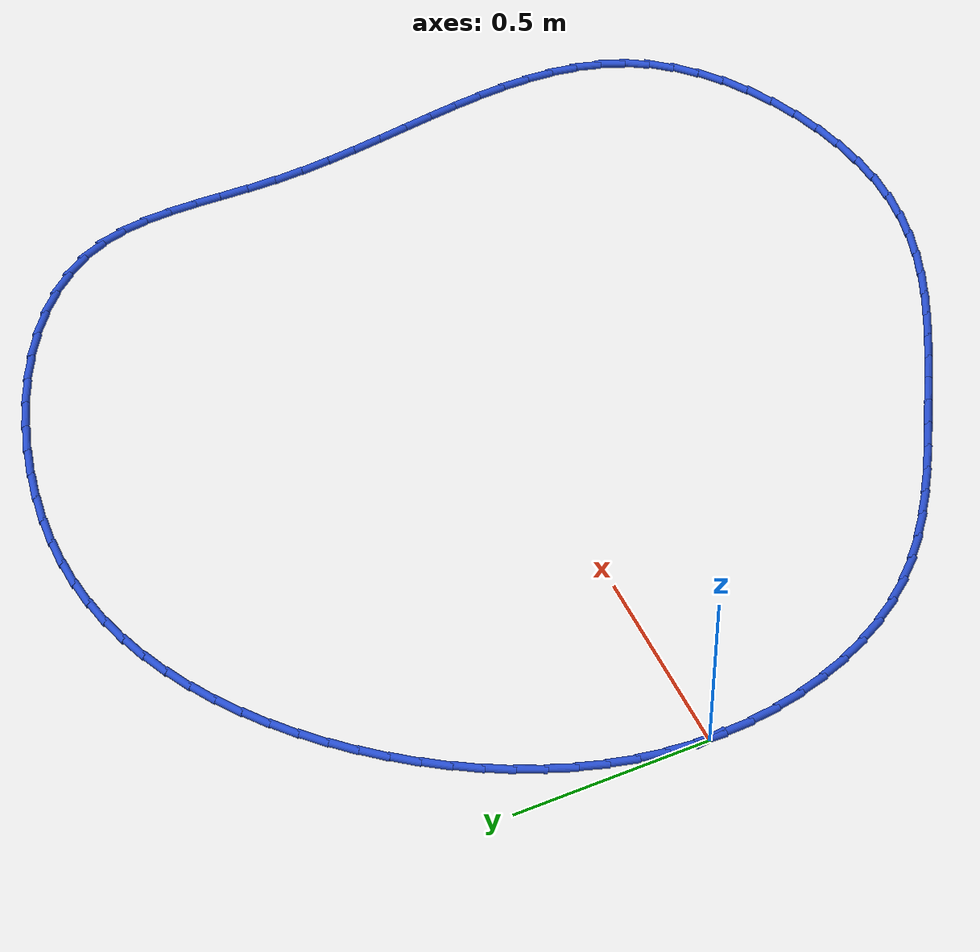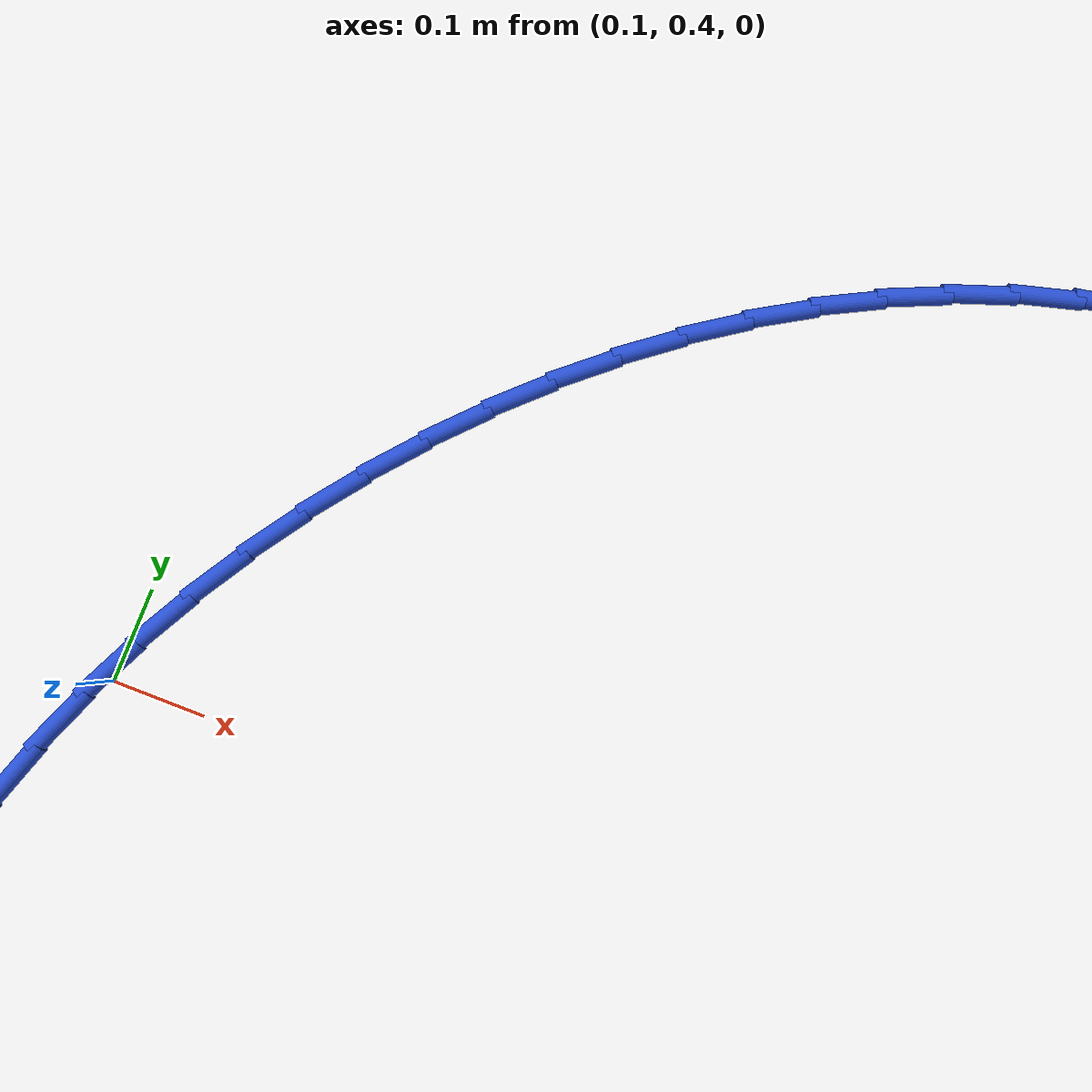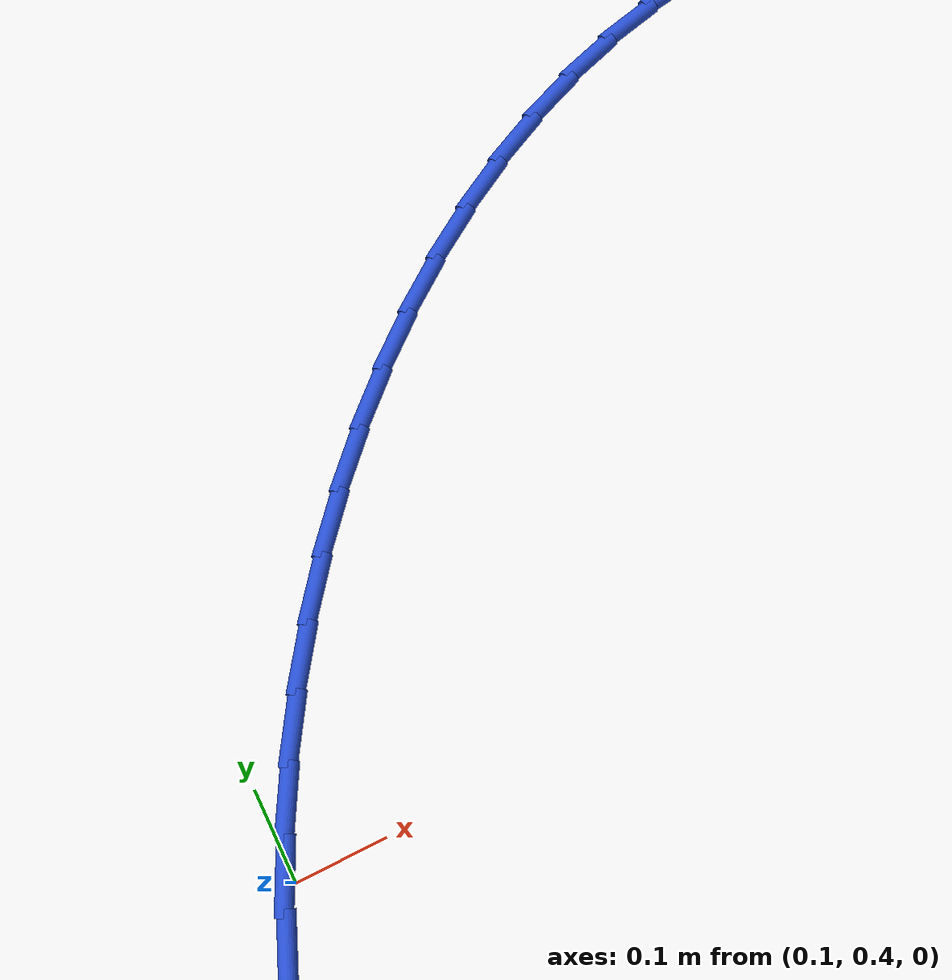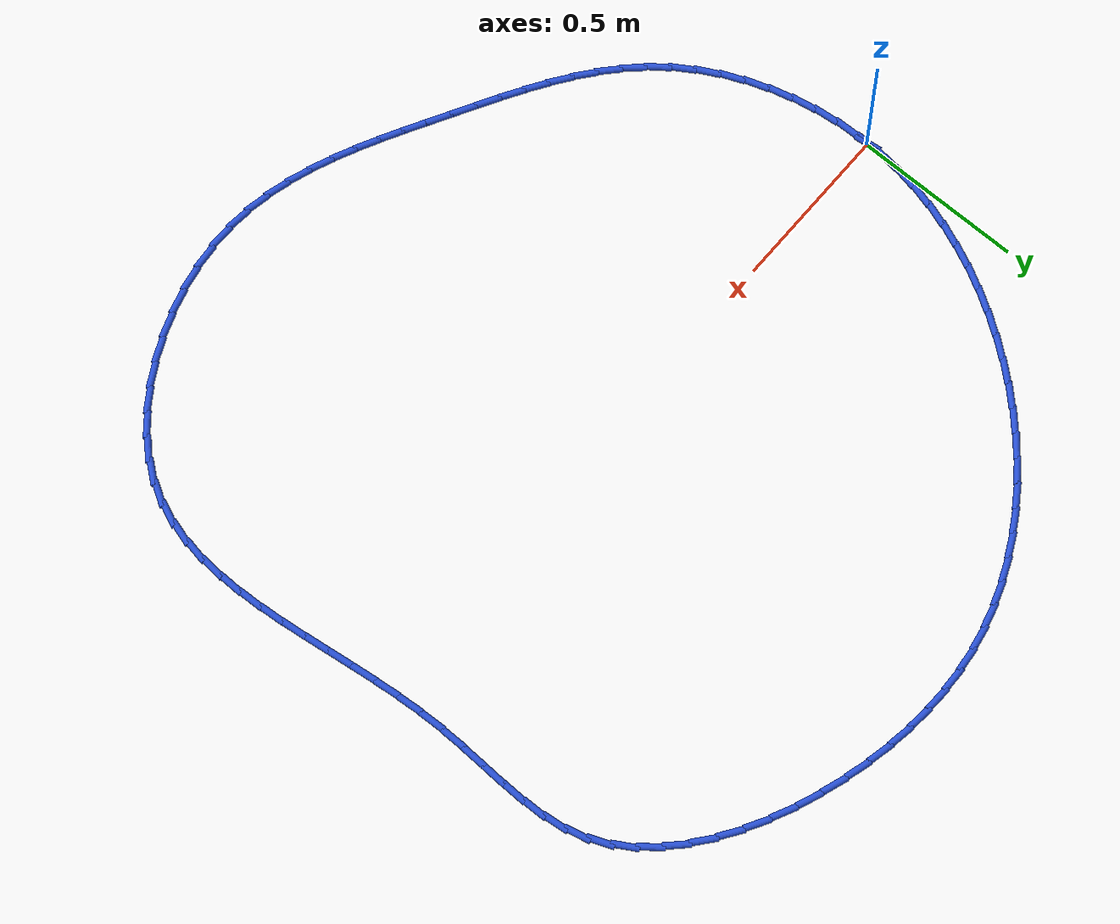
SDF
<sdf version="1.6">
 <world name="default">
  <light name="sun" type="directional">
   <pose>0 0 10 0 -0 0</pose>
   <diffuse>0.8 0.8 0.8 1</diffuse>
   <specular>0.2 0.2 0.2 1</specular>
   <attenuation>
    <range>1000</range>
    <constant>0.9</constant>
    <linear>0.01</linear>
    <quadratic>0.001</quadratic>
   </attenuation>
   <direction>-0.5 0.1 -0.9</direction>
  </light>
  <model name="ground_plane">
   <static>1</static>
   <link name="link">
    <collision name="collision">
     <geometry><plane><normal>0 0 1</normal><size>100 100</size></plane></geometry>
     <surface><friction><ode><mu>100</mu><mu2>50</mu2></ode></friction></surface>
    </collision>
    <visual name="visual">
     <cast_shadows>0</cast_shadows>
     <geometry><plane><normal>0 0 1</normal><size>100 100</size></plane></geometry>
     <material>
      <script><uri>file://media/materials/scripts/gazebo.material</uri><name>Gazebo/WhiteGlow</name></script>
     </material>
    </visual>
   </link>
  </model>
  <gravity>0 0 -9.8</gravity>
  <magnetic_field>6e-06 2.3e-05 -4.2e-05</magnetic_field>
  <atmosphere type="adiabatic"/>
  <physics name="default_physics" default="0" type="ode">
   <max_step_size>0.001</max_step_size>
   <real_time_factor>1</real_time_factor>
   <real_time_update_rate>1000</real_time_update_rate>
  </physics>
  <scene><ambient>0.4 0.4 0.4 1</ambient><background>0.7 0.7 0.7 1</background><shadows>1</shadows></scene>
  <spherical_coordinates>
   <surface_model>EARTH_WGS84</surface_model>
   <latitude_deg>0</latitude_deg>
   <longitude_deg>0</longitude_deg>
   <elevation>0</elevation>
   <heading_deg>0</heading_deg>
  </spherical_coordinates>
  <model name="line">
   <link name="link_0">
    <pose>-9.367506770274758e-17 -1.942890293094024e-16 0.01 0 1.57 1.5202097255137754</pose>
    <collision name="collision">
     <geometry><cylinder><radius>0.01</radius><length>0.08</length></cylinder></geometry>
    </collision>
    <visual name="visual">
     <material>
      <script><name>Gazebo/Blue</name><uri>file://media/materials/scripts/gazebo.material</uri></script>
     </material>
     <geometry><cylinder><radius>0.01</radius><length>0.08</length></cylinder></geometry>
    </visual>
   </link>
   <link name="link_1">
    <pose>0.003591075892938231 0.07092811310826894 0.01 0 1.57 1.4467701393962549</pose>
    <collision name="collision">
     <geometry><cylinder><radius>0.01</radius><length>0.08</length></cylinder></geometry>
    </collision>
    <visual name="visual">
     <material>
      <script><name>Gazebo/Blue</name><uri>file://media/materials/scripts/gazebo.material</uri></script>
     </material>
     <geometry><cylinder><radius>0.01</radius><length>0.08</length></cylinder></geometry>
    </visual>
   </link>
   <link name="link_2">
    <pose>0.012328880521949337 0.1410177910967827 0.01 0 1.57 1.3757837765652383</pose>
    <collision name="collision">
     <geometry><cylinder><radius>0.01</radius><length>0.08</length></cylinder></geometry>
    </collision>
    <visual name="visual">
     <material>
      <script><name>Gazebo/Blue</name><uri>file://media/materials/scripts/gazebo.material</uri></script>
     </material>
     <geometry><cylinder><radius>0.01</radius><length>0.08</length></cylinder></geometry>
    </visual>
   </link>
   <link name="link_3">
    <pose>0.025986804909772045 0.210163840122388 0.01 0 1.57 1.3075610823379984</pose>
    <collision name="collision">
     <geometry><cylinder><radius>0.01</radius><length>0.08</length></cylinder></geometry>
    </collision>
    <visual name="visual">
     <material>
      <script><name>Gazebo/Blue</name><uri>file://media/materials/scripts/gazebo.material</uri></script>
     </material>
     <geometry><cylinder><radius>0.01</radius><length>0.08</length></cylinder></geometry>
    </visual>
   </link>
   <link name="link_4">
    <pose>0.04433824007914517 0.2782610663419318 0.01 0 1.57 1.2422861387038857</pose>
    <collision name="collision">
     <geometry><cylinder><radius>0.01</radius><length>0.08</length></cylinder></geometry>
    </collision>
    <visual name="visual">
     <material>
      <script><name>Gazebo/Blue</name><uri>file://media/materials/scripts/gazebo.material</uri></script>
     </material>
     <geometry><cylinder><radius>0.01</radius><length>0.08</length></cylinder></geometry>
    </visual>
   </link>
   <link name="link_5">
    <pose>0.06715657705280757 0.3452042759122611 0.01 0 1.57 1.1800294768730133</pose>
    <collision name="collision">
     <geometry><cylinder><radius>0.01</radius><length>0.08</length></cylinder></geometry>
    </collision>
    <visual name="visual">
     <material>
      <script><name>Gazebo/Blue</name><uri>file://media/materials/scripts/gazebo.material</uri></script>
     </material>
     <geometry><cylinder><radius>0.01</radius><length>0.08</length></cylinder></geometry>
    </visual>
   </link>
   <link name="link_6">
    <pose>0.09421520685349805 0.41088827499022273 0.01 0 1.57 1.1207659774316616</pose>
    <collision name="collision">
     <geometry><cylinder><radius>0.01</radius><length>0.08</length></cylinder></geometry>
    </collision>
    <visual name="visual">
     <material>
      <script><name>Gazebo/Blue</name><uri>file://media/materials/scripts/gazebo.material</uri></script>
     </material>
     <geometry><cylinder><radius>0.01</radius><length>0.08</length></cylinder></geometry>
    </visual>
   </link>
   <link name="link_7">
    <pose>0.12528752050395547 0.47520786973266377 0.01 0 1.57 1.0643944751226841</pose>
    <collision name="collision">
     <geometry><cylinder><radius>0.01</radius><length>0.08</length></cylinder></geometry>
    </collision>
    <visual name="visual">
     <material>
      <script><name>Gazebo/Blue</name><uri>file://media/materials/scripts/gazebo.material</uri></script>
     </material>
     <geometry><cylinder><radius>0.01</radius><length>0.08</length></cylinder></geometry>
    </visual>
   </link>
   <link name="link_8">
    <pose>0.16014690902691864 0.5380578662964312 0.01 0 1.57 1.01075463141925</pose>
    <collision name="collision">
     <geometry><cylinder><radius>0.01</radius><length>0.08</length></cylinder></geometry>
    </collision>
    <visual name="visual">
     <material>
      <script><name>Gazebo/Blue</name><uri>file://media/materials/scripts/gazebo.material</uri></script>
     </material>
     <geometry><cylinder><radius>0.01</radius><length>0.08</length></cylinder></geometry>
    </visual>
   </link>
   <link name="link_9">
    <pose>0.1985668033121379 0.5993328699810841 0.01 0 1.57 0.9591589978272327</pose>
    <collision name="collision">
     <geometry><cylinder><radius>0.01</radius><length>0.08</length></cylinder></geometry>
    </collision>
    <visual name="visual">
     <material>
      <script><name>Gazebo/Blue</name><uri>file://media/materials/scripts/gazebo.material</uri></script>
     </material>
     <geometry><cylinder><radius>0.01</radius><length>0.08</length></cylinder></geometry>
    </visual>
   </link>
   <link name="link_10">
    <pose>0.24033020231416433 0.6588792804276576 0.01 0 1.57 0.9081551736280491</pose>
    <collision name="collision">
     <geometry><cylinder><radius>0.01</radius><length>0.08</length></cylinder></geometry>
    </collision>
    <visual name="visual">
     <material>
      <script><name>Gazebo/Blue</name><uri>file://media/materials/scripts/gazebo.material</uri></script>
     </material>
     <geometry><cylinder><radius>0.01</radius><length>0.08</length></cylinder></geometry>
    </visual>
   </link>
   <link name="link_11">
    <pose>0.2852420287170048 0.7164330415227844 0.01 0 1.57 0.8571451235882728</pose>
    <collision name="collision">
     <geometry><cylinder><radius>0.01</radius><length>0.08</length></cylinder></geometry>
    </collision>
    <visual name="visual">
     <material>
      <script><name>Gazebo/Blue</name><uri>file://media/materials/scripts/gazebo.material</uri></script>
     </material>
     <geometry><cylinder><radius>0.01</radius><length>0.08</length></cylinder></geometry>
    </visual>
   </link>
   <link name="link_12">
    <pose>0.3331102630202989 0.7717146913192874 0.01 0 1.57 0.8056875525331335</pose>
    <collision name="collision">
     <geometry><cylinder><radius>0.01</radius><length>0.08</length></cylinder></geometry>
    </collision>
    <visual name="visual">
     <material>
      <script><name>Gazebo/Blue</name><uri>file://media/materials/scripts/gazebo.material</uri></script>
     </material>
     <geometry><cylinder><radius>0.01</radius><length>0.08</length></cylinder></geometry>
    </visual>
   </link>
   <link name="link_13">
    <pose>0.3837428857236856 0.8244447678699897 0.01 0 1.57 0.7533449266406702</pose>
    <collision name="collision">
     <geometry><cylinder><radius>0.01</radius><length>0.08</length></cylinder></geometry>
    </collision>
    <visual name="visual">
     <material>
      <script><name>Gazebo/Blue</name><uri>file://media/materials/scripts/gazebo.material</uri></script>
     </material>
     <geometry><cylinder><radius>0.01</radius><length>0.08</length></cylinder></geometry>
    </visual>
   </link>
   <link name="link_14">
    <pose>0.4369478773268041 0.8743438092277142 0.01 0 1.57 0.6996805863514322</pose>
    <collision name="collision">
     <geometry><cylinder><radius>0.01</radius><length>0.08</length></cylinder></geometry>
    </collision>
    <visual name="visual">
     <material>
      <script><name>Gazebo/Blue</name><uri>file://media/materials/scripts/gazebo.material</uri></script>
     </material>
     <geometry><cylinder><radius>0.01</radius><length>0.08</length></cylinder></geometry>
    </visual>
   </link>
   <link name="link_15">
    <pose>0.49253321832929375 0.9211323534452839 0.01 0 1.57 0.6442576407542906</pose>
    <collision name="collision">
     <geometry><cylinder><radius>0.01</radius><length>0.08</length></cylinder></geometry>
    </collision>
    <visual name="visual">
     <material>
      <script><name>Gazebo/Blue</name><uri>file://media/materials/scripts/gazebo.material</uri></script>
     </material>
     <geometry><cylinder><radius>0.01</radius><length>0.08</length></cylinder></geometry>
    </visual>
   </link>
   <link name="link_16">
    <pose>0.5503068892307938 0.9645309385755221 0.01 0 1.57 0.5866404964689935</pose>
    <collision name="collision">
     <geometry><cylinder><radius>0.01</radius><length>0.08</length></cylinder></geometry>
    </collision>
    <visual name="visual">
     <material>
      <script><name>Gazebo/Blue</name><uri>file://media/materials/scripts/gazebo.material</uri></script>
     </material>
     <geometry><cylinder><radius>0.01</radius><length>0.08</length></cylinder></geometry>
    </visual>
   </link>
   <link name="link_17">
    <pose>0.6100768705309437 1.0042601026712519 0.01 0 1.57 0.5264000914673861</pose>
    <collision name="collision">
     <geometry><cylinder><radius>0.01</radius><length>0.08</length></cylinder></geometry>
    </collision>
    <visual name="visual">
     <material>
      <script><name>Gazebo/Blue</name><uri>file://media/materials/scripts/gazebo.material</uri></script>
     </material>
     <geometry><cylinder><radius>0.01</radius><length>0.08</length></cylinder></geometry>
    </visual>
   </link>
   <link name="link_18">
    <pose>0.6716511427293823 1.0400403837852956 0.01 0 1.57 0.46312412502920985</pose>
    <collision name="collision">
     <geometry><cylinder><radius>0.01</radius><length>0.08</length></cylinder></geometry>
    </collision>
    <visual name="visual">
     <material>
      <script><name>Gazebo/Blue</name><uri>file://media/materials/scripts/gazebo.material</uri></script>
     </material>
     <geometry><cylinder><radius>0.01</radius><length>0.08</length></cylinder></geometry>
    </visual>
   </link>
   <link name="link_19">
    <pose>0.7348376863257492 1.071592319970477 0.01 0 1.57 0.3964336999234403</pose>
    <collision name="collision">
     <geometry><cylinder><radius>0.01</radius><length>0.08</length></cylinder></geometry>
    </collision>
    <visual name="visual">
     <material>
      <script><name>Gazebo/Blue</name><uri>file://media/materials/scripts/gazebo.material</uri></script>
     </material>
     <geometry><cylinder><radius>0.01</radius><length>0.08</length></cylinder></geometry>
    </visual>
   </link>
   <link name="link_20">
    <pose>0.7994444818196833 1.0986364492796186 0.01 0 1.57 0.3260076514048042</pose>
    <collision name="collision">
     <geometry><cylinder><radius>0.01</radius><length>0.08</length></cylinder></geometry>
    </collision>
    <visual name="visual">
     <material>
      <script><name>Gazebo/Blue</name><uri>file://media/materials/scripts/gazebo.material</uri></script>
     </material>
     <geometry><cylinder><radius>0.01</radius><length>0.08</length></cylinder></geometry>
    </visual>
   </link>
   <link name="link_21">
    <pose>0.8652795097108241 1.120893309765544 0.01 0 1.57 0.25164124478766664</pose>
    <collision name="collision">
     <geometry><cylinder><radius>0.01</radius><length>0.08</length></cylinder></geometry>
    </collision>
    <visual name="visual">
     <material>
      <script><name>Gazebo/Blue</name><uri>file://media/materials/scripts/gazebo.material</uri></script>
     </material>
     <geometry><cylinder><radius>0.01</radius><length>0.08</length></cylinder></geometry>
    </visual>
   </link>
   <link name="link_22">
    <pose>0.9321517997017381 1.138085567577966 0.01 0 1.57 0.17513519315983364</pose>
    <collision name="collision">
     <geometry><cylinder><radius>0.01</radius><length>0.08</length></cylinder></geometry>
    </collision>
    <visual name="visual">
     <material>
      <script><name>Gazebo/Blue</name><uri>file://media/materials/scripts/gazebo.material</uri></script>
     </material>
     <geometry><cylinder><radius>0.01</radius><length>0.08</length></cylinder></geometry>
    </visual>
   </link>
   <link name="link_23">
    <pose>0.9999418693187853 1.1500808875236996 0.01 0 1.57 0.10011423240111632</pose>
    <collision name="collision">
     <geometry><cylinder><radius>0.01</radius><length>0.08</length></cylinder></geometry>
    </collision>
    <visual name="visual">
     <material>
      <script><name>Gazebo/Blue</name><uri>file://media/materials/scripts/gazebo.material</uri></script>
     </material>
     <geometry><cylinder><radius>0.01</radius><length>0.08</length></cylinder></geometry>
    </visual>
   </link>
   <link name="link_24">
    <pose>1.0686462505837233 1.1569822464549464 0.01 0 1.57 0.027739819786499875</pose>
    <collision name="collision">
     <geometry><cylinder><radius>0.01</radius><length>0.08</length></cylinder></geometry>
    </collision>
    <visual name="visual">
     <material>
      <script><name>Gazebo/Blue</name><uri>file://media/materials/scripts/gazebo.material</uri></script>
     </material>
     <geometry><cylinder><radius>0.01</radius><length>0.08</length></cylinder></geometry>
    </visual>
   </link>
   <link name="link_25">
    <pose>1.138272089843622 1.1589141502457003 0.01 0 1.57 -0.041264472325883685</pose>
    <collision name="collision">
     <geometry><cylinder><radius>0.01</radius><length>0.08</length></cylinder></geometry>
    </collision>
    <visual name="visual">
     <material>
      <script><name>Gazebo/Blue</name><uri>file://media/materials/scripts/gazebo.material</uri></script>
     </material>
     <geometry><cylinder><radius>0.01</radius><length>0.08</length></cylinder></geometry>
    </visual>
   </link>
   <link name="link_26">
    <pose>1.2088265334455526 1.1560011047699563 0.01 0 1.57 -0.10637368255126951</pose>
    <collision name="collision">
     <geometry><cylinder><radius>0.01</radius><length>0.08</length></cylinder></geometry>
    </collision>
    <visual name="visual">
     <material>
      <script><name>Gazebo/Blue</name><uri>file://media/materials/scripts/gazebo.material</uri></script>
     </material>
     <geometry><cylinder><radius>0.01</radius><length>0.08</length></cylinder></geometry>
    </visual>
   </link>
   <link name="link_27">
    <pose>1.2803167277365837 1.148367615901708 0.01 0 1.57 -0.16726015128244698</pose>
    <collision name="collision">
     <geometry><cylinder><radius>0.01</radius><length>0.08</length></cylinder></geometry>
    </collision>
    <visual name="visual">
     <material>
      <script><name>Gazebo/Blue</name><uri>file://media/materials/scripts/gazebo.material</uri></script>
     </material>
     <geometry><cylinder><radius>0.01</radius><length>0.08</length></cylinder></geometry>
    </visual>
   </link>
   <link name="link_28">
    <pose>1.3527498190637868 1.13613818951495 0.01 0 1.57 -0.22388509589639952</pose>
    <collision name="collision">
     <geometry><cylinder><radius>0.01</radius><length>0.08</length></cylinder></geometry>
    </collision>
    <visual name="visual">
     <material>
      <script><name>Gazebo/Blue</name><uri>file://media/materials/scripts/gazebo.material</uri></script>
     </material>
     <geometry><cylinder><radius>0.01</radius><length>0.08</length></cylinder></geometry>
    </visual>
   </link>
   <link name="link_29">
    <pose>1.4261016398355362 1.1194358066773706 0.01 0 1.57 -0.2784640860886954</pose>
    <collision name="collision">
     <geometry><cylinder><radius>0.01</radius><length>0.08</length></cylinder></geometry>
    </collision>
    <visual name="visual">
     <material>
      <script><name>Gazebo/Blue</name><uri>file://media/materials/scripts/gazebo.material</uri></script>
     </material>
     <geometry><cylinder><radius>0.01</radius><length>0.08</length></cylinder></geometry>
    </visual>
   </link>
   <link name="link_30">
    <pose>1.499827680571477 1.0983581108393912 0.01 0 1.57 -0.33401438291265073</pose>
    <collision name="collision">
     <geometry><cylinder><radius>0.01</radius><length>0.08</length></cylinder></geometry>
    </collision>
    <visual name="visual">
     <material>
      <script><name>Gazebo/Blue</name><uri>file://media/materials/scripts/gazebo.material</uri></script>
     </material>
     <geometry><cylinder><radius>0.01</radius><length>0.08</length></cylinder></geometry>
    </visual>
   </link>
   <link name="link_31">
    <pose>1.5729546111034842 1.0729818643832418 0.01 0 1.57 -0.3922828282851192</pose>
    <collision name="collision">
     <geometry><cylinder><radius>0.01</radius><length>0.08</length></cylinder></geometry>
    </collision>
    <visual name="visual">
     <material>
      <script><name>Gazebo/Blue</name><uri>file://media/materials/scripts/gazebo.material</uri></script>
     </material>
     <geometry><cylinder><radius>0.01</radius><length>0.08</length></cylinder></geometry>
    </visual>
   </link>
   <link name="link_32">
    <pose>1.644496306557852 1.043383206663562 0.01 0 1.57 -0.45502464035152984</pose>
    <collision name="collision">
     <geometry><cylinder><radius>0.01</radius><length>0.08</length></cylinder></geometry>
    </collision>
    <visual name="visual">
     <material>
      <script><name>Gazebo/Blue</name><uri>file://media/materials/scripts/gazebo.material</uri></script>
     </material>
     <geometry><cylinder><radius>0.01</radius><length>0.08</length></cylinder></geometry>
    </visual>
   </link>
   <link name="link_33">
    <pose>1.713466642060874 1.0096382770349912 0.01 0 1.57 -0.5241596674916342</pose>
    <collision name="collision">
     <geometry><cylinder><radius>0.01</radius><length>0.08</length></cylinder></geometry>
    </collision>
    <visual name="visual">
     <material>
      <script><name>Gazebo/Blue</name><uri>file://media/materials/scripts/gazebo.material</uri></script>
     </material>
     <geometry><cylinder><radius>0.01</radius><length>0.08</length></cylinder></geometry>
    </visual>
   </link>
   <link name="link_34">
    <pose>1.7788794927388432 0.9718232148521692 0.01 0 1.57 -0.601857187533172</pose>
    <collision name="collision">
     <geometry><cylinder><radius>0.01</radius><length>0.08</length></cylinder></geometry>
    </collision>
    <visual name="visual">
     <material>
      <script><name>Gazebo/Blue</name><uri>file://media/materials/scripts/gazebo.material</uri></script>
     </material>
     <geometry><cylinder><radius>0.01</radius><length>0.08</length></cylinder></geometry>
    </visual>
   </link>
   <link name="link_35">
    <pose>1.8397487337180534 0.9300141594697353 0.01 0 1.57 -0.6905717316180935</pose>
    <collision name="collision">
     <geometry><cylinder><radius>0.01</radius><length>0.08</length></cylinder></geometry>
    </collision>
    <visual name="visual">
     <material>
      <script><name>Gazebo/Blue</name><uri>file://media/materials/scripts/gazebo.material</uri></script>
     </material>
     <geometry><cylinder><radius>0.01</radius><length>0.08</length></cylinder></geometry>
    </visual>
   </link>
   <link name="link_36">
    <pose>1.8950882401247982 0.8842872502423292 0.01 0 1.57 -0.7929695154621982</pose>
    <collision name="collision">
     <geometry><cylinder><radius>0.01</radius><length>0.08</length></cylinder></geometry>
    </collision>
    <visual name="visual">
     <material>
      <script><name>Gazebo/Blue</name><uri>file://media/materials/scripts/gazebo.material</uri></script>
     </material>
     <geometry><cylinder><radius>0.01</radius><length>0.08</length></cylinder></geometry>
    </visual>
   </link>
   <link name="link_37">
    <pose>1.9439118870853709 0.8347186265245898 0.01 0 1.57 -0.9116308424513547</pose>
    <collision name="collision">
     <geometry><cylinder><radius>0.01</radius><length>0.08</length></cylinder></geometry>
    </collision>
    <visual name="visual">
     <material>
      <script><name>Gazebo/Blue</name><uri>file://media/materials/scripts/gazebo.material</uri></script>
     </material>
     <geometry><cylinder><radius>0.01</radius><length>0.08</length></cylinder></geometry>
    </visual>
   </link>
   <link name="link_38">
    <pose>1.9852335497260651 0.7813844276711569 0.01 0 1.57 -1.0483696649962257</pose>
    <collision name="collision">
     <geometry><cylinder><radius>0.01</radius><length>0.08</length></cylinder></geometry>
    </collision>
    <visual name="visual">
     <material>
      <script><name>Gazebo/Blue</name><uri>file://media/materials/scripts/gazebo.material</uri></script>
     </material>
     <geometry><cylinder><radius>0.01</radius><length>0.08</length></cylinder></geometry>
    </visual>
   </link>
   <link name="link_39">
    <pose>2.018067103173175 0.7243607930366703 0.01 0 1.57 -1.2028032870324397</pose>
    <collision name="collision">
     <geometry><cylinder><radius>0.01</radius><length>0.08</length></cylinder></geometry>
    </collision>
    <visual name="visual">
     <material>
      <script><name>Gazebo/Blue</name><uri>file://media/materials/scripts/gazebo.material</uri></script>
     </material>
     <geometry><cylinder><radius>0.01</radius><length>0.08</length></cylinder></geometry>
    </visual>
   </link>
   <link name="link_40">
    <pose>2.0414451632674444 0.6637261361759892 0.01 0 1.57 -1.3545075451910598</pose>
    <collision name="collision">
     <geometry><cylinder><radius>0.01</radius><length>0.08</length></cylinder></geometry>
    </collision>
    <visual name="visual">
     <material>
      <script><name>Gazebo/Blue</name><uri>file://media/materials/scripts/gazebo.material</uri></script>
     </material>
     <geometry><cylinder><radius>0.01</radius><length>0.08</length></cylinder></geometry>
    </visual>
   </link>
   <link name="link_41">
    <pose>2.055514657353758 0.5996940932084359 0.01 0 1.57 -1.4721835716349754</pose>
    <collision name="collision">
     <geometry><cylinder><radius>0.01</radius><length>0.08</length></cylinder></geometry>
    </collision>
    <visual name="visual">
     <material>
      <script><name>Gazebo/Blue</name><uri>file://media/materials/scripts/gazebo.material</uri></script>
     </material>
     <geometry><cylinder><radius>0.01</radius><length>0.08</length></cylinder></geometry>
    </visual>
   </link>
   <link name="link_42">
    <pose>2.0621438951262134 0.5326871913352392 0.01 0 1.57 -1.5534746792698284</pose>
    <collision name="collision">
     <geometry><cylinder><radius>0.01</radius><length>0.08</length></cylinder></geometry>
    </collision>
    <visual name="visual">
     <material>
      <script><name>Gazebo/Blue</name><uri>file://media/materials/scripts/gazebo.material</uri></script>
     </material>
     <geometry><cylinder><radius>0.01</radius><length>0.08</length></cylinder></geometry>
    </visual>
   </link>
   <link name="link_43">
    <pose>2.063348586305567 0.46314584486507704 0.01 0 1.57 1.5400370761058826</pose>
    <collision name="collision">
     <geometry><cylinder><radius>0.01</radius><length>0.08</length></cylinder></geometry>
    </collision>
    <visual name="visual">
     <material>
      <script><name>Gazebo/Blue</name><uri>file://media/materials/scripts/gazebo.material</uri></script>
     </material>
     <geometry><cylinder><radius>0.01</radius><length>0.08</length></cylinder></geometry>
    </visual>
   </link>
   <link name="link_44">
    <pose>2.0611444406125763 0.3915104681066279 0.01 0 1.57 1.5217522882156873</pose>
    <collision name="collision">
     <geometry><cylinder><radius>0.01</radius><length>0.08</length></cylinder></geometry>
    </collision>
    <visual name="visual">
     <material>
      <script><name>Gazebo/Blue</name><uri>file://media/materials/scripts/gazebo.material</uri></script>
     </material>
     <geometry><cylinder><radius>0.01</radius><length>0.08</length></cylinder></geometry>
    </visual>
   </link>
   <link name="link_45">
    <pose>2.057547167767994 0.31822147536856965 0.01 0 1.57 1.5308899716930107</pose>
    <collision name="collision">
     <geometry><cylinder><radius>0.01</radius><length>0.08</length></cylinder></geometry>
    </collision>
    <visual name="visual">
     <material>
      <script><name>Gazebo/Blue</name><uri>file://media/materials/scripts/gazebo.material</uri></script>
     </material>
     <geometry><cylinder><radius>0.01</radius><length>0.08</length></cylinder></geometry>
    </visual>
   </link>
   <link name="link_46">
    <pose>2.054572477492579 0.24371928095958068 0.01 0 1.57 1.5660867233779516</pose>
    <collision name="collision">
     <geometry><cylinder><radius>0.01</radius><length>0.08</length></cylinder></geometry>
    </collision>
    <visual name="visual">
     <material>
      <script><name>Gazebo/Blue</name><uri>file://media/materials/scripts/gazebo.material</uri></script>
     </material>
     <geometry><cylinder><radius>0.01</radius><length>0.08</length></cylinder></geometry>
    </visual>
   </link>
   <link name="link_47">
    <pose>2.054217953598952 0.16844303345409292 0.01 0 1.57 -1.5285917739048467</pose>
    <collision name="collision">
     <geometry><cylinder><radius>0.01</radius><length>0.08</length></cylinder></geometry>
    </collision>
    <visual name="visual">
     <material>
      <script><name>Gazebo/Blue</name><uri>file://media/materials/scripts/gazebo.material</uri></script>
     </material>
     <geometry><cylinder><radius>0.01</radius><length>0.08</length></cylinder></geometry>
    </visual>
   </link>
   <link name="link_48">
    <pose>2.0574141311436183 0.09275736928936941 0.01 0 1.57 -1.4913913106065957</pose>
    <collision name="collision">
     <geometry><cylinder><radius>0.01</radius><length>0.08</length></cylinder></geometry>
    </collision>
    <visual name="visual">
     <material>
      <script><name>Gazebo/Blue</name><uri>file://media/materials/scripts/gazebo.material</uri></script>
     </material>
     <geometry><cylinder><radius>0.01</radius><length>0.08</length></cylinder></geometry>
    </visual>
   </link>
   <link name="link_49">
    <pose>2.063449303877846 0.016912247003749215 0.01 0 1.57 -1.465301296379972</pose>
    <collision name="collision">
     <geometry><cylinder><radius>0.01</radius><length>0.08</length></cylinder></geometry>
    </collision>
    <visual name="visual">
     <material>
      <script><name>Gazebo/Blue</name><uri>file://media/materials/scripts/gazebo.material</uri></script>
     </material>
     <geometry><cylinder><radius>0.01</radius><length>0.08</length></cylinder></geometry>
    </visual>
   </link>
   <link name="link_50">
    <pose>2.0714718543356816 -0.05885214488079222 0.01 0 1.57 -1.4499943866350733</pose>
    <collision name="collision">
     <geometry><cylinder><radius>0.01</radius><length>0.08</length></cylinder></geometry>
    </collision>
    <visual name="visual">
     <material>
      <script><name>Gazebo/Blue</name><uri>file://media/materials/scripts/gazebo.material</uri></script>
     </material>
     <geometry><cylinder><radius>0.01</radius><length>0.08</length></cylinder></geometry>
    </visual>
   </link>
   <link name="link_51">
    <pose>2.080630165051174 -0.13429561784227972 0.01 0 1.57 -1.4453611994667752</pose>
    <collision name="collision">
     <geometry><cylinder><radius>0.01</radius><length>0.08</length></cylinder></geometry>
    </collision>
    <visual name="visual">
     <material>
      <script><name>Gazebo/Blue</name><uri>file://media/materials/scripts/gazebo.material</uri></script>
     </material>
     <geometry><cylinder><radius>0.01</radius><length>0.08</length></cylinder></geometry>
    </visual>
   </link>
   <link name="link_52">
    <pose>2.0900726185583682 -0.2091779833587381 0.01 0 1.57 -1.4515636786841941</pose>
    <collision name="collision">
     <geometry><cylinder><radius>0.01</radius><length>0.08</length></cylinder></geometry>
    </collision>
    <visual name="visual">
     <material>
      <script><name>Gazebo/Blue</name><uri>file://media/materials/scripts/gazebo.material</uri></script>
     </material>
     <geometry><cylinder><radius>0.01</radius><length>0.08</length></cylinder></geometry>
    </visual>
   </link>
   <link name="link_53">
    <pose>2.0989475973913136 -0.28325905290819225 0.01 0 1.57 -1.4690686160362658</pose>
    <collision name="collision">
     <geometry><cylinder><radius>0.01</radius><length>0.08</length></cylinder></geometry>
    </collision>
    <visual name="visual">
     <material>
      <script><name>Gazebo/Blue</name><uri>file://media/materials/scripts/gazebo.material</uri></script>
     </material>
     <geometry><cylinder><radius>0.01</radius><length>0.08</length></cylinder></geometry>
    </visual>
   </link>
   <link name="link_54">
    <pose>2.106403484084057 -0.356298637968667 0.01 0 1.57 -1.4986623911011079</pose>
    <collision name="collision">
     <geometry><cylinder><radius>0.01</radius><length>0.08</length></cylinder></geometry>
    </collision>
    <visual name="visual">
     <material>
      <script><name>Gazebo/Blue</name><uri>file://media/materials/scripts/gazebo.material</uri></script>
     </material>
     <geometry><cylinder><radius>0.01</radius><length>0.08</length></cylinder></geometry>
    </visual>
   </link>
   <link name="link_55">
    <pose>2.111588661170646 -0.4280565500181872 0.01 0 1.57 -1.541434522419348</pose>
    <collision name="collision">
     <geometry><cylinder><radius>0.01</radius><length>0.08</length></cylinder></geometry>
    </collision>
    <visual name="visual">
     <material>
      <script><name>Gazebo/Blue</name><uri>file://media/materials/scripts/gazebo.material</uri></script>
     </material>
     <geometry><cylinder><radius>0.01</radius><length>0.08</length></cylinder></geometry>
    </visual>
   </link>
   <link name="link_56">
    <pose>2.1136515111851284 -0.4982926005347778 0.01 0 1.57 1.5428937868094421</pose>
    <collision name="collision">
     <geometry><cylinder><radius>0.01</radius><length>0.08</length></cylinder></geometry>
    </collision>
    <visual name="visual">
     <material>
      <script><name>Gazebo/Blue</name><uri>file://media/materials/scripts/gazebo.material</uri></script>
     </material>
     <geometry><cylinder><radius>0.01</radius><length>0.08</length></cylinder></geometry>
    </visual>
   </link>
   <link name="link_57">
    <pose>2.1117404166615508 -0.5667666009964634 0.01 0 1.57 1.4697950402075437</pose>
    <collision name="collision">
     <geometry><cylinder><radius>0.01</radius><length>0.08</length></cylinder></geometry>
    </collision>
    <visual name="visual">
     <material>
      <script><name>Gazebo/Blue</name><uri>file://media/materials/scripts/gazebo.material</uri></script>
     </material>
     <geometry><cylinder><radius>0.01</radius><length>0.08</length></cylinder></geometry>
    </visual>
   </link>
   <link name="link_58">
    <pose>2.1050037601339606 -0.6332383628812682 0.01 0 1.57 1.379876727186817</pose>
    <collision name="collision">
     <geometry><cylinder><radius>0.01</radius><length>0.08</length></cylinder></geometry>
    </collision>
    <visual name="visual">
     <material>
      <script><name>Gazebo/Blue</name><uri>file://media/materials/scripts/gazebo.material</uri></script>
     </material>
     <geometry><cylinder><radius>0.01</radius><length>0.08</length></cylinder></geometry>
    </visual>
   </link>
   <link name="link_59">
    <pose>2.092589924136406 -0.6974676976672185 0.01 0 1.57 1.2731313927076104</pose>
    <collision name="collision">
     <geometry><cylinder><radius>0.01</radius><length>0.08</length></cylinder></geometry>
    </collision>
    <visual name="visual">
     <material>
      <script><name>Gazebo/Blue</name><uri>file://media/materials/scripts/gazebo.material</uri></script>
     </material>
     <geometry><cylinder><radius>0.01</radius><length>0.08</length></cylinder></geometry>
    </visual>
   </link>
   <link name="link_60">
    <pose>2.0736472912029345 -0.7592144168323387 0.01 0 1.57 1.151296653900866</pose>
    <collision name="collision">
     <geometry><cylinder><radius>0.01</radius><length>0.08</length></cylinder></geometry>
    </collision>
    <visual name="visual">
     <material>
      <script><name>Gazebo/Blue</name><uri>file://media/materials/scripts/gazebo.material</uri></script>
     </material>
     <geometry><cylinder><radius>0.01</radius><length>0.08</length></cylinder></geometry>
    </visual>
   </link>
   <link name="link_61">
    <pose>2.047324243867592 -0.8182383318546531 0.01 0 1.57 1.0189076110702757</pose>
    <collision name="collision">
     <geometry><cylinder><radius>0.01</radius><length>0.08</length></cylinder></geometry>
    </collision>
    <visual name="visual">
     <material>
      <script><name>Gazebo/Blue</name><uri>file://media/materials/scripts/gazebo.material</uri></script>
     </material>
     <geometry><cylinder><radius>0.01</radius><length>0.08</length></cylinder></geometry>
    </visual>
   </link>
   <link name="link_62">
    <pose>2.012809093186434 -0.8742960927151513 0.01 0 1.57 0.8912471071417414</pose>
    <collision name="collision">
     <geometry><cylinder><radius>0.01</radius><length>0.08</length></cylinder></geometry>
    </collision>
    <visual name="visual">
     <material>
      <script><name>Gazebo/Blue</name><uri>file://media/materials/scripts/gazebo.material</uri></script>
     </material>
     <geometry><cylinder><radius>0.01</radius><length>0.08</length></cylinder></geometry>
    </visual>
   </link>
   <link name="link_63">
    <pose>1.9701683124555243 -0.927074817461776 0.01 0 1.57 0.77807690747376</pose>
    <collision name="collision">
     <geometry><cylinder><radius>0.01</radius><length>0.08</length></cylinder></geometry>
    </collision>
    <visual name="visual">
     <material>
      <script><name>Gazebo/Blue</name><uri>file://media/materials/scripts/gazebo.material</uri></script>
     </material>
     <geometry><cylinder><radius>0.01</radius><length>0.08</length></cylinder></geometry>
    </visual>
   </link>
   <link name="link_64">
    <pose>1.9203247712826506 -0.9761938156120019 0.01 0 1.57 0.6769707997597034</pose>
    <collision name="collision">
     <geometry><cylinder><radius>0.01</radius><length>0.08</length></cylinder></geometry>
    </collision>
    <visual name="visual">
     <material>
      <script><name>Gazebo/Blue</name><uri>file://media/materials/scripts/gazebo.material</uri></script>
     </material>
     <geometry><cylinder><radius>0.01</radius><length>0.08</length></cylinder></geometry>
    </visual>
   </link>
   <link name="link_65">
    <pose>1.8642369137523227 -1.0212695799348475 0.01 0 1.57 0.5849870444675536</pose>
    <collision name="collision">
     <geometry><cylinder><radius>0.01</radius><length>0.08</length></cylinder></geometry>
    </collision>
    <visual name="visual">
     <material>
      <script><name>Gazebo/Blue</name><uri>file://media/materials/scripts/gazebo.material</uri></script>
     </material>
     <geometry><cylinder><radius>0.01</radius><length>0.08</length></cylinder></geometry>
    </visual>
   </link>
   <link name="link_66">
    <pose>1.802863183949052 -1.061918603199332 0.01 0 1.57 0.49936759811055115</pose>
    <collision name="collision">
     <geometry><cylinder><radius>0.01</radius><length>0.08</length></cylinder></geometry>
    </collision>
    <visual name="visual">
     <material>
      <script><name>Gazebo/Blue</name><uri>file://media/materials/scripts/gazebo.material</uri></script>
     </material>
     <geometry><cylinder><radius>0.01</radius><length>0.08</length></cylinder></geometry>
    </visual>
   </link>
   <link name="link_67">
    <pose>1.7371620259573484 -1.0977573781744743 0.01 0 1.57 0.4175855416593571</pose>
    <collision name="collision">
     <geometry><cylinder><radius>0.01</radius><length>0.08</length></cylinder></geometry>
    </collision>
    <visual name="visual">
     <material>
      <script><name>Gazebo/Blue</name><uri>file://media/materials/scripts/gazebo.material</uri></script>
     </material>
     <geometry><cylinder><radius>0.01</radius><length>0.08</length></cylinder></geometry>
    </visual>
   </link>
   <link name="link_68">
    <pose>1.6680918838617218 -1.1284023976292927 0.01 0 1.57 0.3372918317728546</pose>
    <collision name="collision">
     <geometry><cylinder><radius>0.01</radius><length>0.08</length></cylinder></geometry>
    </collision>
    <visual name="visual">
     <material>
      <script><name>Gazebo/Blue</name><uri>file://media/materials/scripts/gazebo.material</uri></script>
     </material>
     <geometry><cylinder><radius>0.01</radius><length>0.08</length></cylinder></geometry>
    </visual>
   </link>
   <link name="link_69">
    <pose>1.596611201746683 -1.1534701543328065 0.01 0 1.57 0.2562225278725682</pose>
    <collision name="collision">
     <geometry><cylinder><radius>0.01</radius><length>0.08</length></cylinder></geometry>
    </collision>
    <visual name="visual">
     <material>
      <script><name>Gazebo/Blue</name><uri>file://media/materials/scripts/gazebo.material</uri></script>
     </material>
     <geometry><cylinder><radius>0.01</radius><length>0.08</length></cylinder></geometry>
    </visual>
   </link>
   <link name="link_70">
    <pose>1.5236784236967422 -1.1725771410540347 0.01 0 1.57 0.17209689832426528</pose>
    <collision name="collision">
     <geometry><cylinder><radius>0.01</radius><length>0.08</length></cylinder></geometry>
    </collision>
    <visual name="visual">
     <material>
      <script><name>Gazebo/Blue</name><uri>file://media/materials/scripts/gazebo.material</uri></script>
     </material>
     <geometry><cylinder><radius>0.01</radius><length>0.08</length></cylinder></geometry>
    </visual>
   </link>
   <link name="link_71">
    <pose>1.45025199379641 -1.1853398505619954 0.01 0 1.57 0.08252581392235431</pose>
    <collision name="collision">
     <geometry><cylinder><radius>0.01</radius><length>0.08</length></cylinder></geometry>
    </collision>
    <visual name="visual">
     <material>
      <script><name>Gazebo/Blue</name><uri>file://media/materials/scripts/gazebo.material</uri></script>
     </material>
     <geometry><cylinder><radius>0.01</radius><length>0.08</length></cylinder></geometry>
    </visual>
   </link>
   <link name="link_72">
    <pose>1.3772903561301955 -1.1913747756257083 0.01 0 1.57 -0.014526308336837069</pose>
    <collision name="collision">
     <geometry><cylinder><radius>0.01</radius><length>0.08</length></cylinder></geometry>
    </collision>
    <visual name="visual">
     <material>
      <script><name>Gazebo/Blue</name><uri>file://media/materials/scripts/gazebo.material</uri></script>
     </material>
     <geometry><cylinder><radius>0.01</radius><length>0.08</length></cylinder></geometry>
    </visual>
   </link>
   <link name="link_73">
    <pose>1.305714988781236 -1.1903349766319913 0.01 0 1.57 -0.11203344126992384</pose>
    <collision name="collision">
     <geometry><cylinder><radius>0.01</radius><length>0.08</length></cylinder></geometry>
    </collision>
    <visual name="visual">
     <material>
      <script><name>Gazebo/Blue</name><uri>file://media/materials/scripts/gazebo.material</uri></script>
     </material>
     <geometry><cylinder><radius>0.01</radius><length>0.08</length></cylinder></geometry>
    </visual>
   </link>
   <link name="link_74">
    <pose>1.2358405579289722 -1.1824737862434231 0.01 0 1.57 -0.20115398487025593</pose>
    <collision name="collision">
     <geometry><cylinder><radius>0.01</radius><length>0.08</length></cylinder></geometry>
    </collision>
    <visual name="visual">
     <material>
      <script><name>Gazebo/Blue</name><uri>file://media/materials/scripts/gazebo.material</uri></script>
     </material>
     <geometry><cylinder><radius>0.01</radius><length>0.08</length></cylinder></geometry>
    </visual>
   </link>
   <link name="link_75">
    <pose>1.1674855253450047 -1.1685353939223986 0.01 0 1.57 -0.27974827901975496</pose>
    <collision name="collision">
     <geometry><cylinder><radius>0.01</radius><length>0.08</length></cylinder></geometry>
    </collision>
    <visual name="visual">
     <material>
      <script><name>Gazebo/Blue</name><uri>file://media/materials/scripts/gazebo.material</uri></script>
     </material>
     <geometry><cylinder><radius>0.01</radius><length>0.08</length></cylinder></geometry>
    </visual>
   </link>
   <link name="link_76">
    <pose>1.1004537894860864 -1.1492783954969295 0.01 0 1.57 -0.3467824287503343</pose>
    <collision name="collision">
     <geometry><cylinder><radius>0.01</radius><length>0.08</length></cylinder></geometry>
    </collision>
    <visual name="visual">
     <material>
      <script><name>Gazebo/Blue</name><uri>file://media/materials/scripts/gazebo.material</uri></script>
     </material>
     <geometry><cylinder><radius>0.01</radius><length>0.08</length></cylinder></geometry>
    </visual>
   </link>
   <link name="link_77">
    <pose>1.0345492488089711 -1.1254613867950274 0.01 0 1.57 -0.4019320224966502</pose>
    <collision name="collision">
     <geometry><cylinder><radius>0.01</radius><length>0.08</length></cylinder></geometry>
    </collision>
    <visual name="visual">
     <material>
      <script><name>Gazebo/Blue</name><uri>file://media/materials/scripts/gazebo.material</uri></script>
     </material>
     <geometry><cylinder><radius>0.01</radius><length>0.08</length></cylinder></geometry>
    </visual>
   </link>
   <link name="link_78">
    <pose>0.9695758017704107 -1.0978429636447042 0.01 0 1.57 -0.4453261374370301</pose>
    <collision name="collision">
     <geometry><cylinder><radius>0.01</radius><length>0.08</length></cylinder></geometry>
    </collision>
    <visual name="visual">
     <material>
      <script><name>Gazebo/Blue</name><uri>file://media/materials/scripts/gazebo.material</uri></script>
     </material>
     <geometry><cylinder><radius>0.01</radius><length>0.08</length></cylinder></geometry>
    </visual>
   </link>
   <link name="link_79">
    <pose>0.90533734682716 -1.0671817218739714 0.01 0 1.57 -0.47731335396489993</pose>
    <collision name="collision">
     <geometry><cylinder><radius>0.01</radius><length>0.08</length></cylinder></geometry>
    </collision>
    <visual name="visual">
     <material>
      <script><name>Gazebo/Blue</name><uri>file://media/materials/scripts/gazebo.material</uri></script>
     </material>
     <geometry><cylinder><radius>0.01</radius><length>0.08</length></cylinder></geometry>
    </visual>
   </link>
   <link name="link_80">
    <pose>0.8416377824359715 -1.0342362573108408 0.01 0 1.57 -0.4982859814443007</pose>
    <collision name="collision">
     <geometry><cylinder><radius>0.01</radius><length>0.08</length></cylinder></geometry>
    </collision>
    <visual name="visual">
     <material>
      <script><name>Gazebo/Blue</name><uri>file://media/materials/scripts/gazebo.material</uri></script>
     </material>
     <geometry><cylinder><radius>0.01</radius><length>0.08</length></cylinder></geometry>
    </visual>
   </link>
   <link name="link_81">
    <pose>0.7782810070535988 -0.9997651657833238 0.01 0 1.57 -0.508565006711407</pose>
    <collision name="collision">
     <geometry><cylinder><radius>0.01</radius><length>0.08</length></cylinder></geometry>
    </collision>
    <visual name="visual">
     <material>
      <script><name>Gazebo/Blue</name><uri>file://media/materials/scripts/gazebo.material</uri></script>
     </material>
     <geometry><cylinder><radius>0.01</radius><length>0.08</length></cylinder></geometry>
    </visual>
   </link>
   <link name="link_82">
    <pose>0.7150709191367952 -0.9645270431194324 0.01 0 1.57 -0.5091562628354541</pose>
    <collision name="collision">
     <geometry><cylinder><radius>0.01</radius><length>0.08</length></cylinder></geometry>
    </collision>
    <visual name="visual">
     <material>
      <script><name>Gazebo/Blue</name><uri>file://media/materials/scripts/gazebo.material</uri></script>
     </material>
     <geometry><cylinder><radius>0.01</radius><length>0.08</length></cylinder></geometry>
    </visual>
   </link>
   <link name="link_83">
    <pose>0.6518406323643537 -0.92922864002267 0.01 0 1.57 -0.5115253908248296</pose>
    <collision name="collision">
     <geometry><cylinder><radius>0.01</radius><length>0.08</length></cylinder></geometry>
    </collision>
    <visual name="visual">
     <material>
      <script><name>Gazebo/Blue</name><uri>file://media/materials/scripts/gazebo.material</uri></script>
     </material>
     <geometry><cylinder><radius>0.01</radius><length>0.08</length></cylinder></geometry>
    </visual>
   </link>
   <link name="link_84">
    <pose>0.5888291922080975 -0.8938563435339557 0.01 0 1.57 -0.5241241107848611</pose>
    <collision name="collision">
     <geometry><cylinder><radius>0.01</radius><length>0.08</length></cylinder></geometry>
    </collision>
    <visual name="visual">
     <material>
      <script><name>Gazebo/Blue</name><uri>file://media/materials/scripts/gazebo.material</uri></script>
     </material>
     <geometry><cylinder><radius>0.01</radius><length>0.08</length></cylinder></geometry>
    </visual>
   </link>
   <link name="link_85">
    <pose>0.5265728985376544 -0.8578690351615059 0.01 0 1.57 -0.5473948374616296</pose>
    <collision name="collision">
     <geometry><cylinder><radius>0.01</radius><length>0.08</length></cylinder></geometry>
    </collision>
    <visual name="visual">
     <material>
      <script><name>Gazebo/Blue</name><uri>file://media/materials/scripts/gazebo.material</uri></script>
     </material>
     <geometry><cylinder><radius>0.01</radius><length>0.08</length></cylinder></geometry>
    </visual>
   </link>
   <link name="link_86">
    <pose>0.46561486725879303 -0.820713500724455 0.01 0 1.57 -0.5817213950282668</pose>
    <collision name="collision">
     <geometry><cylinder><radius>0.01</radius><length>0.08</length></cylinder></geometry>
    </collision>
    <visual name="visual">
     <material>
      <script><name>Gazebo/Blue</name><uri>file://media/materials/scripts/gazebo.material</uri></script>
     </material>
     <geometry><cylinder><radius>0.01</radius><length>0.08</length></cylinder></geometry>
    </visual>
   </link>
   <link name="link_87">
    <pose>0.40649821427728144 -0.7818365260419377 0.01 0 1.57 -0.6275486300003169</pose>
    <collision name="collision">
     <geometry><cylinder><radius>0.01</radius><length>0.08</length></cylinder></geometry>
    </collision>
    <visual name="visual">
     <material>
      <script><name>Gazebo/Blue</name><uri>file://media/materials/scripts/gazebo.material</uri></script>
     </material>
     <geometry><cylinder><radius>0.01</radius><length>0.08</length></cylinder></geometry>
    </visual>
   </link>
   <link name="link_88">
    <pose>0.3497660554988875 -0.7406848969330884 0.01 0 1.57 -0.6852572223557835</pose>
    <collision name="collision">
     <geometry><cylinder><radius>0.01</radius><length>0.08</length></cylinder></geometry>
    </collision>
    <visual name="visual">
     <material>
      <script><name>Gazebo/Blue</name><uri>file://media/materials/scripts/gazebo.material</uri></script>
     </material>
     <geometry><cylinder><radius>0.01</radius><length>0.08</length></cylinder></geometry>
    </visual>
   </link>
   <link name="link_89">
    <pose>0.2959615068293791 -0.6967053992170409 0.01 0 1.57 -0.7549734451864688</pose>
    <collision name="collision">
     <geometry><cylinder><radius>0.01</radius><length>0.08</length></cylinder></geometry>
    </collision>
    <visual name="visual">
     <material>
      <script><name>Gazebo/Blue</name><uri>file://media/materials/scripts/gazebo.material</uri></script>
     </material>
     <geometry><cylinder><radius>0.01</radius><length>0.08</length></cylinder></geometry>
    </visual>
   </link>
   <link name="link_90">
    <pose>0.24562768417452427 -0.64934481871293 0.01 0 1.57 -0.8363186512175131</pose>
    <collision name="collision">
     <geometry><cylinder><radius>0.01</radius><length>0.08</length></cylinder></geometry>
    </collision>
    <visual name="visual">
     <material>
      <script><name>Gazebo/Blue</name><uri>file://media/materials/scripts/gazebo.material</uri></script>
     </material>
     <geometry><cylinder><radius>0.01</radius><length>0.08</length></cylinder></geometry>
    </visual>
   </link>
   <link name="link_91">
    <pose>0.1993077034400909 -0.59804994123989 0.01 0 1.57 -0.9267913188899698</pose>
    <collision name="collision">
     <geometry><cylinder><radius>0.01</radius><length>0.08</length></cylinder></geometry>
    </collision>
    <visual name="visual">
     <material>
      <script><name>Gazebo/Blue</name><uri>file://media/materials/scripts/gazebo.material</uri></script>
     </material>
     <geometry><cylinder><radius>0.01</radius><length>0.08</length></cylinder></geometry>
    </visual>
   </link>
   <link name="link_92">
    <pose>0.15750382142429306 -0.5423699063229608 0.01 0 1.57 -1.0156373883977299</pose>
    <collision name="collision">
     <geometry><cylinder><radius>0.01</radius><length>0.08</length></cylinder></geometry>
    </collision>
    <visual name="visual">
     <material>
      <script><name>Gazebo/Blue</name><uri>file://media/materials/scripts/gazebo.material</uri></script>
     </material>
     <geometry><cylinder><radius>0.01</radius><length>0.08</length></cylinder></geometry>
    </visual>
   </link>
   <link name="link_93">
    <pose>0.12042534592921017 -0.4825877024915011 0.01 0 1.57 -1.099202790014972</pose>
    <collision name="collision">
     <geometry><cylinder><radius>0.01</radius><length>0.08</length></cylinder></geometry>
    </collision>
    <visual name="visual">
     <material>
      <script><name>Gazebo/Blue</name><uri>file://media/materials/scripts/gazebo.material</uri></script>
     </material>
     <geometry><cylinder><radius>0.01</radius><length>0.08</length></cylinder></geometry>
    </visual>
   </link>
   <link name="link_94">
    <pose>0.08815373447561213 -0.41930658836583623 0.01 0 1.57 -1.178444757803238</pose>
    <collision name="collision">
     <geometry><cylinder><radius>0.01</radius><length>0.08</length></cylinder></geometry>
    </collision>
    <visual name="visual">
     <material>
      <script><name>Gazebo/Blue</name><uri>file://media/materials/scripts/gazebo.material</uri></script>
     </material>
     <geometry><cylinder><radius>0.01</radius><length>0.08</length></cylinder></geometry>
    </visual>
   </link>
   <link name="link_95">
    <pose>0.0607699118737632 -0.35313115702751013 0.01 0 1.57 -1.2544002955154565</pose>
    <collision name="collision">
     <geometry><cylinder><radius>0.01</radius><length>0.08</length></cylinder></geometry>
    </collision>
    <visual name="visual">
     <material>
      <script><name>Gazebo/Blue</name><uri>file://media/materials/scripts/gazebo.material</uri></script>
     </material>
     <geometry><cylinder><radius>0.01</radius><length>0.08</length></cylinder></geometry>
    </visual>
   </link>
   <link name="link_96">
    <pose>0.038354802933927755 -0.2846660015580677 0.01 0 1.57 -1.3281280010875227</pose>
    <collision name="collision">
     <geometry><cylinder><radius>0.01</radius><length>0.08</length></cylinder></geometry>
    </collision>
    <visual name="visual">
     <material>
      <script><name>Gazebo/Blue</name><uri>file://media/materials/scripts/gazebo.material</uri></script>
     </material>
     <geometry><cylinder><radius>0.01</radius><length>0.08</length></cylinder></geometry>
    </visual>
   </link>
   <link name="link_97">
    <pose>0.020989332466369373 -0.21451571503905098 0.01 0 1.57 -1.4006920024317018</pose>
    <collision name="collision">
     <geometry><cylinder><radius>0.01</radius><length>0.08</length></cylinder></geometry>
    </collision>
    <visual name="visual">
     <material>
      <script><name>Gazebo/Blue</name><uri>file://media/materials/scripts/gazebo.material</uri></script>
     </material>
     <geometry><cylinder><radius>0.01</radius><length>0.08</length></cylinder></geometry>
    </visual>
   </link>
   <link name="link_98">
    <pose>0.008754425281352512 -0.14328489055200494 0.01 0 1.57 -1.473161363704405</pose>
    <collision name="collision">
     <geometry><cylinder><radius>0.01</radius><length>0.08</length></cylinder></geometry>
    </collision>
    <visual name="visual">
     <material>
      <script><name>Gazebo/Blue</name><uri>file://media/materials/scripts/gazebo.material</uri></script>
     </material>
     <geometry><cylinder><radius>0.01</radius><length>0.08</length></cylinder></geometry>
    </visual>
   </link>
   <link name="link_99">
    <pose>0.0017310061891413105 -0.07157812117847337 0.01 0 1.57 -1.5466175857850943</pose>
    <collision name="collision">
     <geometry><cylinder><radius>0.01</radius><length>0.08</length></cylinder></geometry>
    </collision>
    <visual name="visual">
     <material>
      <script><name>Gazebo/Blue</name><uri>file://media/materials/scripts/gazebo.material</uri></script>
     </material>
     <geometry><cylinder><radius>0.01</radius><length>0.08</length></cylinder></geometry>
    </visual>
   </link>
   <link name="link_100">
    <pose>-8.326672684688674e-17 -2.7755575615628914e-16 0.01 0 1.57 -1.446441332248135</pose>
    <collision name="collision">
     <geometry><cylinder><radius>0.01</radius><length>0.08</length></cylinder></geometry>
    </collision>
    <visual name="visual">
     <material>
      <script><name>Gazebo/Blue</name><uri>file://media/materials/scripts/gazebo.material</uri></script>
     </material>
     <geometry><cylinder><radius>0.01</radius><length>0.08</length></cylinder></geometry>
    </visual>
   </link>
  </model>
 </world>
</sdf>
